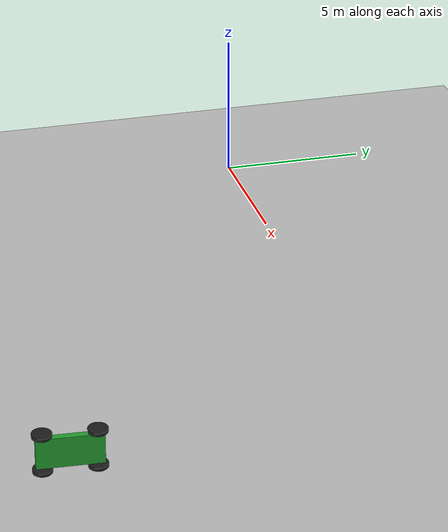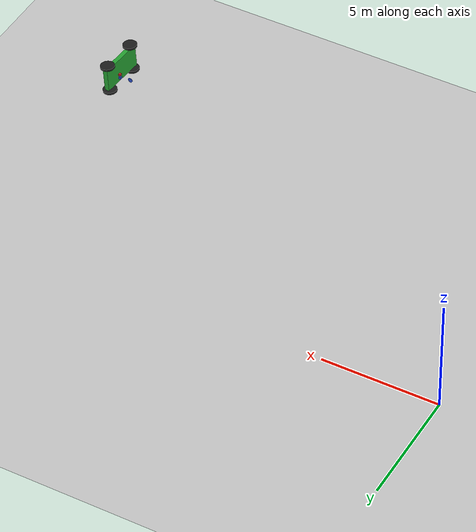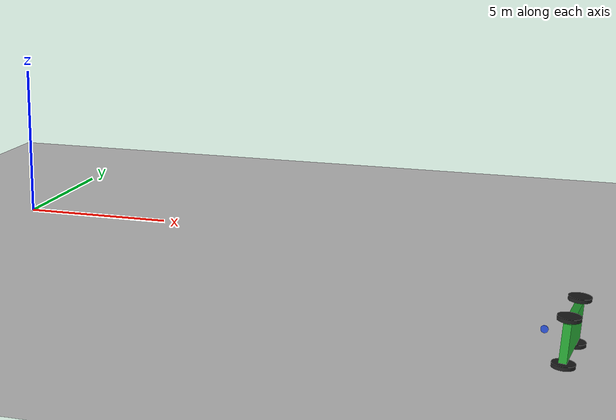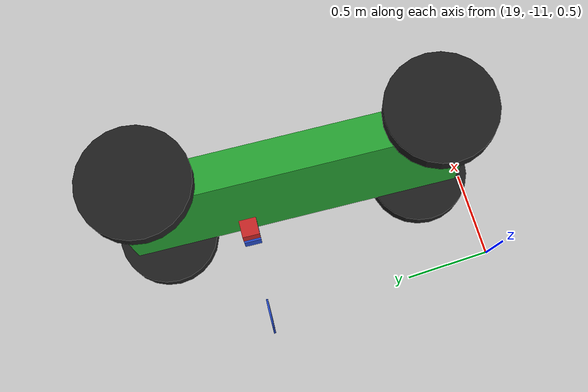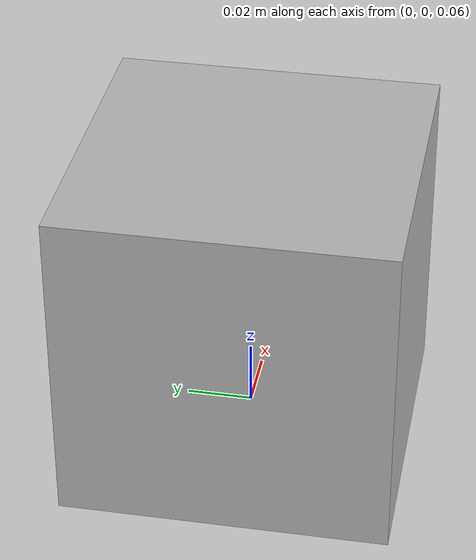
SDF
<?xml version="1.0"?>
<sdf version="1.4">
  <world name="default">

    <physics type='ode'>
      <real_time_update_rate>60</real_time_update_rate>
    </physics>
    <plugin name="object_pos" filename="build/libobject_pos.so" />

    <include>
      <uri>model://asphalt_plane</uri>
    </include>

    <include>
      <uri>model://sun</uri>
    </include>

  *<model name="camerabox">
      <include>
        <uri>model://camera</uri>
      </include>
      <pose>0 0 0.05 0 0 0</pose>
      <link name="link">
        <sensor
          name="camera" type="camera"
        >
          <camera>
            <horizontal_fov>1.04719755</horizontal_fov>
            <image>
              <width>320</width>
              <height>240</height>
              <format>R8G8B8</format>
            </image>
            <clip>
              <near>0.1</near>
              <far>50</far>
            </clip>
            <save enabled="false">
              <path>/home/samholmes/Desktop/output</path>
            </save>
          </camera>
          <plugin name="camera_feed" filename="build/libcamera_feed.so" />
        </sensor>

      </link>
      <plugin name="camera_push" filename="build/libcamera_push.so"/>

    </model>

    <model name="box">
      <pose>20 -10 1 -1.5 0 1.5</pose>
      <include>
        <uri>model://utility_cart</uri>
      </include>
      <plugin name="model_push" filename="build/libmodel_push.so"/>

    </model>

  </world>
</sdf>

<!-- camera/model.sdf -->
<sdf version="1.5">
  <model name="camera">
    <pose>0 0 0.05 0 0 0</pose>
    <link name="link">
      <inertial>
        <mass>0.1</mass>
        <inertia>
          <ixx>0.000166667</ixx>
          <iyy>0.000166667</iyy>
          <izz>0.000166667</izz>
        </inertia>
      </inertial>
      <collision name="collision">
        <geometry>
          <box>
            <size>0.1 0.1 0.1</size>
          </box>
        </geometry>
      </collision>
      <visual name="visual">
        <geometry>
          <box>
            <size>0.1 0.1 0.1</size>
          </box>
        </geometry>
      </visual>
      <sensor name="camera" type="camera">
        <camera>
          <horizontal_fov>1.047</horizontal_fov>
          <image>
            <width>320</width>
            <height>240</height>
          </image>
          <clip>
            <near>0.1</near>
            <far>100</far>
          </clip>
        </camera>
        <always_on>1</always_on>
        <update_rate>30</update_rate>
        <visualize>true</visualize>
      </sensor>
    </link>
  </model>
</sdf>

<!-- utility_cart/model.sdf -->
<sdf version="1.5">
  <model name="utility_cart">
    <link name="chassis">
      <pose>0 0 0.3 0 0 0</pose>
      <collision name="collision">
        <geometry>
          <box>
            <size>2.0 1.0 0.2</size>
          </box>
        </geometry>
      </collision>
      <visual name="visual">
        <geometry>
          <box>
            <size>2.0 1.0 0.2</size>
          </box>
        </geometry>
        <material>
          <script>
            <uri>file://media/materials/scripts/gazebo.material</uri>
            <name>Gazebo/Green</name>
          </script>
        </material>
      </visual>
    </link>
    <link name="front_left_wheel">
      <pose>0.8 0.6 0.3 0 1.5707 1.5707</pose>
      <collision name="collision">
        <geometry>
          <cylinder>
            <radius>0.3</radius>
            <length>0.1</length>
          </cylinder>
        </geometry>
      </collision>
      <visual name="visual">
        <geometry>
          <cylinder>
            <radius>0.3</radius>
            <length>0.1</length>
          </cylinder>
        </geometry>
        <material>
          <script>
            <uri>file://media/materials/scripts/gazebo.material</uri>
            <name>Gazebo/Black</name>
          </script>
        </material>
      </visual>
    </link>
    <link name="front_right_wheel">
      <pose>0.8 -0.6 0.3 0 1.5707 1.5707</pose>
      <collision name="collision">
        <geometry>
          <cylinder>
            <radius>0.3</radius>
            <length>0.1</length>
          </cylinder>
        </geometry>
      </collision>
      <visual name="visual">
        <geometry>
          <cylinder>
            <radius>0.3</radius>
            <length>0.1</length>
          </cylinder>
        </geometry>
        <material>
          <script>
            <uri>file://media/materials/scripts/gazebo.material</uri>
            <name>Gazebo/Black</name>
          </script>
        </material>
      </visual>
    </link>
    <link name="back_right_wheel">
      <pose>-0.8 -0.6 0.3 0 1.5707 1.5707</pose>
      <collision name="collision">
        <geometry>
          <cylinder>
            <radius>0.3</radius>
            <length>0.1</length>
          </cylinder>
        </geometry>
      </collision>
      <visual name="visual">
        <geometry>
          <cylinder>
            <radius>0.3</radius>
            <length>0.1</length>
          </cylinder>
        </geometry>
        <material>
          <script>
            <uri>file://media/materials/scripts/gazebo.material</uri>
            <name>Gazebo/Black</name>
          </script>
        </material>
      </visual>
    </link>
    <link name="back_left_wheel">
      <pose>-0.8 0.6 0.3 0 1.5707 1.5707</pose>
      <collision name="collision">
        <geometry>
          <cylinder>
            <radius>0.3</radius>
            <length>0.1</length>
          </cylinder>
        </geometry>
      </collision>
      <visual name="visual">
        <geometry>
          <cylinder>
            <radius>0.3</radius>
            <length>0.1</length>
          </cylinder>
        </geometry>
        <material>
          <script>
            <uri>file://media/materials/scripts/gazebo.material</uri>
            <name>Gazebo/Black</name>
          </script>
        </material>
      </visual>
    </link>
    <link name="gas_pedal">
      <pose>0.3 0.1 0.5 0 0 0</pose>
      <collision name="collision">
        <geometry>
          <box>
            <size>0.1 0.1 0.1</size>
          </box>
        </geometry>
      </collision>
      <visual name="visual">
        <geometry>
          <box>
            <size>0.1 0.1 0.1</size>
          </box>
        </geometry>
        <material>
          <script>
            <uri>file://media/materials/scripts/gazebo.material</uri>
            <name>Gazebo/Red</name>
          </script>
        </material>
      </visual>
    </link>
    <link name="brake_pedal">
      <pose>0.3 0.25 0.5 0 0 0</pose>
      <collision name="collision">
        <geometry>
          <box>
            <size>0.1 0.1 0.1</size>
          </box>
        </geometry>
      </collision>
      <visual name="visual">
        <geometry>
          <box>
            <size>0.1 0.1 0.1</size>
          </box>
        </geometry>
        <material>
          <script>
            <uri>file://media/materials/scripts/gazebo.material</uri>
            <name>Gazebo/Blue</name>
          </script>
        </material>
      </visual>
    </link>
    <link name="steering_wheel">
      <pose>0.3 0.2 1.0 0 1.5707 0</pose>
      <collision name="collision">
        <geometry>
          <cylinder>
            <radius>0.1</radius>
            <length>0.01</length>
          </cylinder>
        </geometry>
      </collision>
      <visual name="visual">
        <geometry>
          <cylinder>
            <radius>0.1</radius>
            <length>0.01</length>
          </cylinder>
        </geometry>
        <material>
          <script>
            <uri>file://media/materials/scripts/gazebo.material</uri>
            <name>Gazebo/Blue</name>
          </script>
        </material>
      </visual>
    </link>
    <joint type="prismatic" name="gas_joint">
      <parent>chassis</parent>
      <child>gas_pedal</child>
      <axis>
        <xyz>1 0 0</xyz>
        <limit>
          <lower>0</lower>
          <upper>0.2</upper>
        </limit>
        <use_parent_model_frame>true</use_parent_model_frame>
      </axis>
    </joint>
    <joint type="prismatic" name="brake_joint">
      <parent>chassis</parent>
      <child>brake_pedal</child>
      <axis>
        <xyz>1 0 0</xyz>
        <limit>
          <lower>0</lower>
          <upper>0.2</upper>
        </limit>
        <use_parent_model_frame>true</use_parent_model_frame>
      </axis>
    </joint>
    <joint type="revolute" name="steering_joint">
      <parent>chassis</parent>
      <child>steering_wheel</child>
      <axis>
        <xyz>1 0 0</xyz>
        <limit>
          <lower>-7.853</lower>
          <upper>7.853</upper>
        </limit>
        <use_parent_model_frame>true</use_parent_model_frame>
      </axis>
    </joint>
    <joint type="revolute2" name="front_left_joint">
      <parent>chassis</parent>
      <child>front_left_wheel</child>
      <axis>
        <xyz>0 0 1</xyz>
        <limit>
          <lower>0</lower>
          <upper>0</upper>
        </limit>
        <use_parent_model_frame>true</use_parent_model_frame>
      </axis>
      <axis2>
        <xyz>0 1 0</xyz>
        <use_parent_model_frame>true</use_parent_model_frame>
      </axis2>
      <physics>
        <ode>
          <limit>
            <cfm>0.0</cfm>
            <erp>0.9</erp>
          </limit>
        </ode>
      </physics>
    </joint>
    <joint type="revolute2" name="front_right_joint">
      <parent>chassis</parent>
      <child>front_right_wheel</child>
      <axis>
        <xyz>0 0 1</xyz>
        <limit>
          <lower>0</lower>
          <upper>0</upper>
        </limit>
        <use_parent_model_frame>true</use_parent_model_frame>
      </axis>
      <axis2>
        <xyz>0 1 0</xyz>
        <use_parent_model_frame>true</use_parent_model_frame>
      </axis2>
      <physics>
        <ode>
          <limit>
            <cfm>0.0</cfm>
            <erp>0.9</erp>
          </limit>
        </ode>
      </physics>
    </joint>
    <joint type="revolute2" name="back_right_joint">
      <parent>chassis</parent>
      <child>back_right_wheel</child>
      <axis>
        <xyz>0 0 1</xyz>
        <limit>
          <lower>0</lower>
          <upper>0</upper>
        </limit>
        <use_parent_model_frame>true</use_parent_model_frame>
      </axis>
      <axis2>
        <xyz>0 1 0</xyz>
        <use_parent_model_frame>true</use_parent_model_frame>
      </axis2>
      <physics>
        <ode>
          <limit>
            <cfm>0.0</cfm>
            <erp>0.9</erp>
          </limit>
        </ode>
      </physics>
    </joint>
    <joint type="revolute2" name="back_left_joint">
      <parent>chassis</parent>
      <child>back_left_wheel</child>
      <axis>
        <xyz>0 0 1</xyz>
        <limit>
          <lower>0</lower>
          <upper>0</upper>
        </limit>
        <use_parent_model_frame>true</use_parent_model_frame>
      </axis>
      <axis2>
        <xyz>0 1 0</xyz>
        <use_parent_model_frame>true</use_parent_model_frame>
      </axis2>
      <physics>
        <ode>
          <limit>
            <cfm>0.0</cfm>
            <erp>0.9</erp>
          </limit>
        </ode>
      </physics>
    </joint>
    <plugin filename="libVehiclePlugin.so" name="vehicle">
      <!-- Joints for each wheel -->
      <front_left>front_left_joint</front_left>
      <front_right>front_right_joint</front_right>
      <back_left>back_left_joint</back_left>
      <back_right>back_right_joint</back_right>
      <!-- Joint which controls the gas -->
      <gas>gas_joint</gas>
      <!-- Joint which controls the gas -->
      <brake>brake_joint</brake>
      <!-- Joint which controls the steering -->
      <steering>steering_joint</steering>
      <!-- Power is multiplied by "gas" to determine force applied to wheels -->
      <front_power>10</front_power>
      <rear_power>10</rear_power>
      <!-- The angle range the front tires can turn for steering, in radians -->
      <tire_angle_range>0.5</tire_angle_range>
      <!-- Maximum speed for the car in meters/second -->
      <max_speed>10</max_speed>
      <!-- Factor for the down-force applied as the car travels faster -->
      <!-- A larger number increases the down force -->
      <aero_load>0.1</aero_load>
    </plugin>
  </model>
</sdf>
